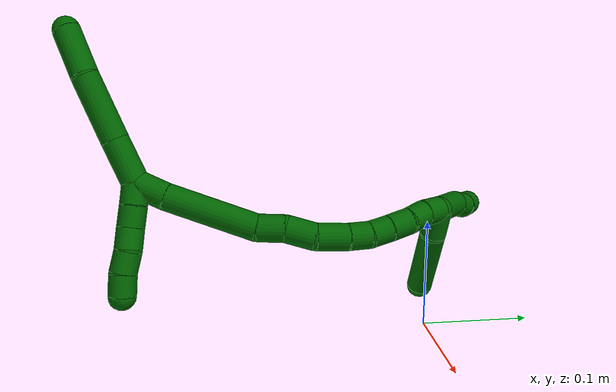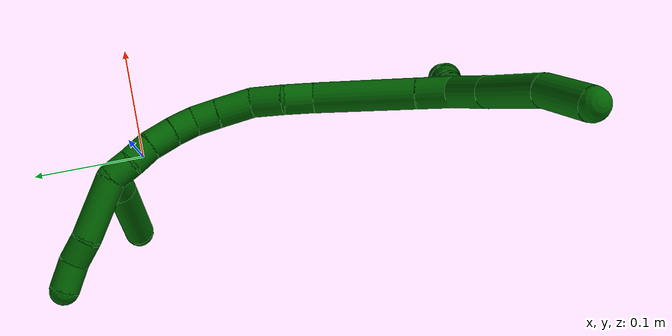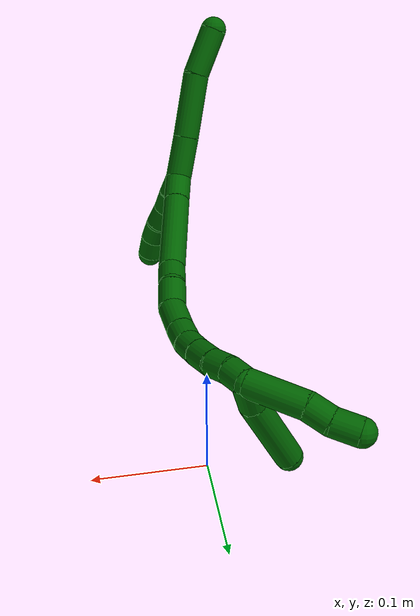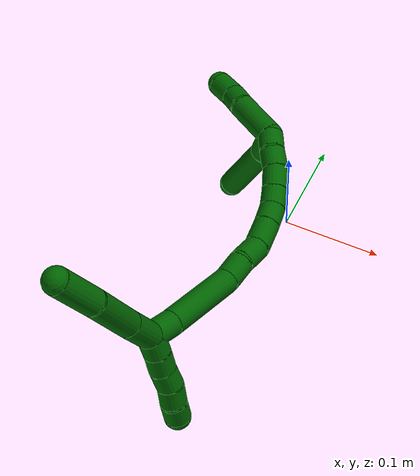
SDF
<sdf version="1.7">
 <world name="default">
  <model name="6">
   <static>0</static>
   <link name="6">
    <collision name="collision-cylinder-e_1_2_8">
     <pose>-0.000784 -0.004776 0.020055 0.233805 -0.038017 -0.004465</pose>
     <geometry><cylinder><radius>0.0125</radius><length>0.041261</length></cylinder></geometry>
     <surface>
      <friction><ode><mu>1.16</mu><mu2>1.16</mu2><slip1>0</slip1><slip2>0</slip2></ode></friction>
      <contact><ode><kp>1e+06</kp><kd>1</kd><max_vel>0</max_vel><min_depth>0.001</min_depth></ode></contact>
     </surface>
    </collision>
    <visual name="visual-cylinder-e_1_2_8">
     <pose>-0.000784 -0.004776 0.020055 0.233805 -0.038017 -0.004465</pose>
     <geometry><cylinder><radius>0.0125</radius><length>0.041261</length></cylinder></geometry>
     <material><ambient>0 0.392157 0.003922 1</ambient></material>
    </visual>
    <collision name="collision-cylinder-e_2_8_9">
     <pose>-0.00247 -0.015896 0.070499 0.205775 -0.029046 -0.002999</pose>
     <geometry><cylinder><radius>0.0125</radius><length>0.062115</length></cylinder></geometry>
     <surface>
      <friction><ode><mu>1.16</mu><mu2>1.16</mu2><slip1>0</slip1><slip2>0</slip2></ode></friction>
      <contact><ode><kp>1e+06</kp><kd>1</kd><max_vel>0</max_vel><min_depth>0.001</min_depth></ode></contact>
     </surface>
    </collision>
    <visual name="visual-cylinder-e_2_8_9">
     <pose>-0.00247 -0.015896 0.070499 0.205775 -0.029046 -0.002999</pose>
     <geometry><cylinder><radius>0.0125</radius><length>0.062115</length></cylinder></geometry>
     <material><ambient>0 0.392157 0.003922 1</ambient></material>
    </visual>
    <collision name="collision-cylinder-e_3_9_6">
     <pose>-0.008226 -0.02931 0.122566 0.315298 -0.209739 -0.033461</pose>
     <geometry><cylinder><radius>0.0125</radius><length>0.046623</length></cylinder></geometry>
     <surface>
      <friction><ode><mu>1.16</mu><mu2>1.16</mu2><slip1>0</slip1><slip2>0</slip2></ode></friction>
      <contact><ode><kp>1e+06</kp><kd>1</kd><max_vel>0</max_vel><min_depth>0.001</min_depth></ode></contact>
     </surface>
    </collision>
    <visual name="visual-cylinder-e_3_9_6">
     <pose>-0.008226 -0.02931 0.122566 0.315298 -0.209739 -0.033461</pose>
     <geometry><cylinder><radius>0.0125</radius><length>0.046623</length></cylinder></geometry>
     <material><ambient>0 0.392157 0.003922 1</ambient></material>
    </visual>
    <collision name="collision-cylinder-e_1_2_10">
     <pose>0.004123 -0.00145 -0.008994 2.98171 0.424999 2.43056</pose>
     <geometry><cylinder><radius>0.0125</radius><length>0.02</length></cylinder></geometry>
     <surface>
      <friction><ode><mu>1.16</mu><mu2>1.16</mu2><slip1>0</slip1><slip2>0</slip2></ode></friction>
      <contact><ode><kp>1e+06</kp><kd>1</kd><max_vel>0</max_vel><min_depth>0.001</min_depth></ode></contact>
     </surface>
    </collision>
    <visual name="visual-cylinder-e_1_2_10">
     <pose>0.004123 -0.00145 -0.008994 2.98171 0.424999 2.43056</pose>
     <geometry><cylinder><radius>0.0125</radius><length>0.02</length></cylinder></geometry>
     <material><ambient>0 0.392157 0.003922 1</ambient></material>
    </visual>
    <collision name="collision-cylinder-e_2_10_11">
     <pose>0.012106 -0.004934 -0.026987 2.91931 0.39624 2.12684</pose>
     <geometry><cylinder><radius>0.0125</radius><length>0.02</length></cylinder></geometry>
     <surface>
      <friction><ode><mu>1.16</mu><mu2>1.16</mu2><slip1>0</slip1><slip2>0</slip2></ode></friction>
      <contact><ode><kp>1e+06</kp><kd>1</kd><max_vel>0</max_vel><min_depth>0.001</min_depth></ode></contact>
     </surface>
    </collision>
    <visual name="visual-cylinder-e_2_10_11">
     <pose>0.012106 -0.004934 -0.026987 2.91931 0.39624 2.12684</pose>
     <geometry><cylinder><radius>0.0125</radius><length>0.02</length></cylinder></geometry>
     <material><ambient>0 0.392157 0.003922 1</ambient></material>
    </visual>
    <collision name="collision-cylinder-e_3_11_12">
     <pose>0.020556 -0.00797 -0.044812 3.02861 0.476895 2.6844</pose>
     <geometry><cylinder><radius>0.0125</radius><length>0.02</length></cylinder></geometry>
     <surface>
      <friction><ode><mu>1.16</mu><mu2>1.16</mu2><slip1>0</slip1><slip2>0</slip2></ode></friction>
      <contact><ode><kp>1e+06</kp><kd>1</kd><max_vel>0</max_vel><min_depth>0.001</min_depth></ode></contact>
     </surface>
    </collision>
    <visual name="visual-cylinder-e_3_11_12">
     <pose>0.020556 -0.00797 -0.044812 3.02861 0.476895 2.6844</pose>
     <geometry><cylinder><radius>0.0125</radius><length>0.02</length></cylinder></geometry>
     <material><ambient>0 0.392157 0.003922 1</ambient></material>
    </visual>
    <collision name="collision-cylinder-e_4_12_13">
     <pose>0.029241 -0.011948 -0.062264 2.80922 0.421882 1.81258</pose>
     <geometry><cylinder><radius>0.0125</radius><length>0.02</length></cylinder></geometry>
     <surface>
      <friction><ode><mu>1.16</mu><mu2>1.16</mu2><slip1>0</slip1><slip2>0</slip2></ode></friction>
      <contact><ode><kp>1e+06</kp><kd>1</kd><max_vel>0</max_vel><min_depth>0.001</min_depth></ode></contact>
     </surface>
    </collision>
    <visual name="visual-cylinder-e_4_12_13">
     <pose>0.029241 -0.011948 -0.062264 2.80922 0.421882 1.81258</pose>
     <geometry><cylinder><radius>0.0125</radius><length>0.02</length></cylinder></geometry>
     <material><ambient>0 0.392157 0.003922 1</ambient></material>
    </visual>
    <collision name="collision-cylinder-e_5_13_5">
     <pose>0.03601 -0.016921 -0.080314 2.93295 0.270784 1.83101</pose>
     <geometry><cylinder><radius>0.0125</radius><length>0.02</length></cylinder></geometry>
     <surface>
      <friction><ode><mu>1.16</mu><mu2>1.16</mu2><slip1>0</slip1><slip2>0</slip2></ode></friction>
      <contact><ode><kp>1e+06</kp><kd>1</kd><max_vel>0</max_vel><min_depth>0.001</min_depth></ode></contact>
     </surface>
    </collision>
    <visual name="visual-cylinder-e_5_13_5">
     <pose>0.03601 -0.016921 -0.080314 2.93295 0.270784 1.83101</pose>
     <geometry><cylinder><radius>0.0125</radius><length>0.02</length></cylinder></geometry>
     <material><ambient>0 0.392157 0.003922 1</ambient></material>
    </visual>
    <collision name="collision-cylinder-e_1_2_14">
     <pose>-0.004612 0.010252 -0.009208 -2.3026 -0.322987 0.700477</pose>
     <geometry><cylinder><radius>0.0125</radius><length>0.029064</length></cylinder></geometry>
     <surface>
      <friction><ode><mu>1.16</mu><mu2>1.16</mu2><slip1>0</slip1><slip2>0</slip2></ode></friction>
      <contact><ode><kp>1e+06</kp><kd>1</kd><max_vel>0</max_vel><min_depth>0.001</min_depth></ode></contact>
     </surface>
    </collision>
    <visual name="visual-cylinder-e_1_2_14">
     <pose>-0.004612 0.010252 -0.009208 -2.3026 -0.322987 0.700477</pose>
     <geometry><cylinder><radius>0.0125</radius><length>0.029064</length></cylinder></geometry>
     <material><ambient>0 0.392157 0.003922 1</ambient></material>
    </visual>
    <collision name="collision-cylinder-e_2_14_15">
     <pose>-0.024229 0.052219 -0.042019 -2.21059 -0.362738 0.700084</pose>
     <geometry><cylinder><radius>0.0125</radius><length>0.08457</length></cylinder></geometry>
     <surface>
      <friction><ode><mu>1.16</mu><mu2>1.16</mu2><slip1>0</slip1><slip2>0</slip2></ode></friction>
      <contact><ode><kp>1e+06</kp><kd>1</kd><max_vel>0</max_vel><min_depth>0.001</min_depth></ode></contact>
     </surface>
    </collision>
    <visual name="visual-cylinder-e_2_14_15">
     <pose>-0.024229 0.052219 -0.042019 -2.21059 -0.362738 0.700084</pose>
     <geometry><cylinder><radius>0.0125</radius><length>0.08457</length></cylinder></geometry>
     <material><ambient>0 0.392157 0.003922 1</ambient></material>
    </visual>
    <collision name="collision-cylinder-e_3_15_16">
     <pose>-0.045086 0.094492 -0.069281 -1.90436 -0.482473 0.66555</pose>
     <geometry><cylinder><radius>0.0125</radius><length>0.025229</length></cylinder></geometry>
     <surface>
      <friction><ode><mu>1.16</mu><mu2>1.16</mu2><slip1>0</slip1><slip2>0</slip2></ode></friction>
      <contact><ode><kp>1e+06</kp><kd>1</kd><max_vel>0</max_vel><min_depth>0.001</min_depth></ode></contact>
     </surface>
    </collision>
    <visual name="visual-cylinder-e_3_15_16">
     <pose>-0.045086 0.094492 -0.069281 -1.90436 -0.482473 0.66555</pose>
     <geometry><cylinder><radius>0.0125</radius><length>0.025229</length></cylinder></geometry>
     <material><ambient>0 0.392157 0.003922 1</ambient></material>
    </visual>
    <collision name="collision-cylinder-e_4_16_17">
     <pose>-0.05658 0.11524 -0.079968 -2.17466 -0.427642 0.784321</pose>
     <geometry><cylinder><radius>0.0125</radius><length>0.027205</length></cylinder></geometry>
     <surface>
      <friction><ode><mu>1.16</mu><mu2>1.16</mu2><slip1>0</slip1><slip2>0</slip2></ode></friction>
      <contact><ode><kp>1e+06</kp><kd>1</kd><max_vel>0</max_vel><min_depth>0.001</min_depth></ode></contact>
     </surface>
    </collision>
    <visual name="visual-cylinder-e_4_16_17">
     <pose>-0.05658 0.11524 -0.079968 -2.17466 -0.427642 0.784321</pose>
     <geometry><cylinder><radius>0.0125</radius><length>0.027205</length></cylinder></geometry>
     <material><ambient>0 0.392157 0.003922 1</ambient></material>
    </visual>
    <collision name="collision-cylinder-e_5_17_18">
     <pose>-0.07198 0.135721 -0.091721 -2.00111 -0.711194 1.04982</pose>
     <geometry><cylinder><radius>0.0125</radius><length>0.029899</length></cylinder></geometry>
     <surface>
      <friction><ode><mu>1.16</mu><mu2>1.16</mu2><slip1>0</slip1><slip2>0</slip2></ode></friction>
      <contact><ode><kp>1e+06</kp><kd>1</kd><max_vel>0</max_vel><min_depth>0.001</min_depth></ode></contact>
     </surface>
    </collision>
    <visual name="visual-cylinder-e_5_17_18">
     <pose>-0.07198 0.135721 -0.091721 -2.00111 -0.711194 1.04982</pose>
     <geometry><cylinder><radius>0.0125</radius><length>0.029899</length></cylinder></geometry>
     <material><ambient>0 0.392157 0.003922 1</ambient></material>
    </visual>
    <collision name="collision-cylinder-e_6_18_19">
     <pose>-0.088906 0.153158 -0.098836 -1.89369 -0.760554 1.01377</pose>
     <geometry><cylinder><radius>0.0125</radius><length>0.020798</length></cylinder></geometry>
     <surface>
      <friction><ode><mu>1.16</mu><mu2>1.16</mu2><slip1>0</slip1><slip2>0</slip2></ode></friction>
      <contact><ode><kp>1e+06</kp><kd>1</kd><max_vel>0</max_vel><min_depth>0.001</min_depth></ode></contact>
     </surface>
    </collision>
    <visual name="visual-cylinder-e_6_18_19">
     <pose>-0.088906 0.153158 -0.098836 -1.89369 -0.760554 1.01377</pose>
     <geometry><cylinder><radius>0.0125</radius><length>0.020798</length></cylinder></geometry>
     <material><ambient>0 0.392157 0.003922 1</ambient></material>
    </visual>
    <collision name="collision-cylinder-e_7_19_20">
     <pose>-0.104092 0.166276 -0.101711 -1.65181 -0.928903 0.99542</pose>
     <geometry><cylinder><radius>0.0125</radius><length>0.020019</length></cylinder></geometry>
     <surface>
      <friction><ode><mu>1.16</mu><mu2>1.16</mu2><slip1>0</slip1><slip2>0</slip2></ode></friction>
      <contact><ode><kp>1e+06</kp><kd>1</kd><max_vel>0</max_vel><min_depth>0.001</min_depth></ode></contact>
     </surface>
    </collision>
    <visual name="visual-cylinder-e_7_19_20">
     <pose>-0.104092 0.166276 -0.101711 -1.65181 -0.928903 0.99542</pose>
     <geometry><cylinder><radius>0.0125</radius><length>0.020019</length></cylinder></geometry>
     <material><ambient>0 0.392157 0.003922 1</ambient></material>
    </visual>
    <collision name="collision-cylinder-e_8_20_21">
     <pose>-0.121633 0.178291 -0.10259 -1.63588 -1.00456 1.06046</pose>
     <geometry><cylinder><radius>0.0125</radius><length>0.022571</length></cylinder></geometry>
     <surface>
      <friction><ode><mu>1.16</mu><mu2>1.16</mu2><slip1>0</slip1><slip2>0</slip2></ode></friction>
      <contact><ode><kp>1e+06</kp><kd>1</kd><max_vel>0</max_vel><min_depth>0.001</min_depth></ode></contact>
     </surface>
    </collision>
    <visual name="visual-cylinder-e_8_20_21">
     <pose>-0.121633 0.178291 -0.10259 -1.63588 -1.00456 1.06046</pose>
     <geometry><cylinder><radius>0.0125</radius><length>0.022571</length></cylinder></geometry>
     <material><ambient>0 0.392157 0.003922 1</ambient></material>
    </visual>
    <collision name="collision-cylinder-e_9_21_22">
     <pose>-0.140662 0.188099 -0.102775 -1.51546 -1.1929 1.14198</pose>
     <geometry><cylinder><radius>0.0125</radius><length>0.020453</length></cylinder></geometry>
     <surface>
      <friction><ode><mu>1.16</mu><mu2>1.16</mu2><slip1>0</slip1><slip2>0</slip2></ode></friction>
      <contact><ode><kp>1e+06</kp><kd>1</kd><max_vel>0</max_vel><min_depth>0.001</min_depth></ode></contact>
     </surface>
    </collision>
    <visual name="visual-cylinder-e_9_21_22">
     <pose>-0.140662 0.188099 -0.102775 -1.51546 -1.1929 1.14198</pose>
     <geometry><cylinder><radius>0.0125</radius><length>0.020453</length></cylinder></geometry>
     <material><ambient>0 0.392157 0.003922 1</ambient></material>
    </visual>
    <collision name="collision-cylinder-e_10_22_1">
     <pose>-0.159208 0.196057 -0.104189 -1.94038 -1.10956 1.47074</pose>
     <geometry><cylinder><radius>0.0125</radius><length>0.020192</length></cylinder></geometry>
     <surface>
      <friction><ode><mu>1.16</mu><mu2>1.16</mu2><slip1>0</slip1><slip2>0</slip2></ode></friction>
      <contact><ode><kp>1e+06</kp><kd>1</kd><max_vel>0</max_vel><min_depth>0.001</min_depth></ode></contact>
     </surface>
    </collision>
    <visual name="visual-cylinder-e_10_22_1">
     <pose>-0.159208 0.196057 -0.104189 -1.94038 -1.10956 1.47074</pose>
     <geometry><cylinder><radius>0.0125</radius><length>0.020192</length></cylinder></geometry>
     <material><ambient>0 0.392157 0.003922 1</ambient></material>
    </visual>
    <collision name="collision-cylinder-e_1_1_23">
     <pose>-0.169247 0.193526 -0.117904 2.63434 -0.072036 -0.27626</pose>
     <geometry><cylinder><radius>0.0125</radius><length>0.02774</length></cylinder></geometry>
     <surface>
      <friction><ode><mu>1.16</mu><mu2>1.16</mu2><slip1>0</slip1><slip2>0</slip2></ode></friction>
      <contact><ode><kp>1e+06</kp><kd>1</kd><max_vel>0</max_vel><min_depth>0.001</min_depth></ode></contact>
     </surface>
    </collision>
    <visual name="visual-cylinder-e_1_1_23">
     <pose>-0.169247 0.193526 -0.117904 2.63434 -0.072036 -0.27626</pose>
     <geometry><cylinder><radius>0.0125</radius><length>0.02774</length></cylinder></geometry>
     <material><ambient>0 0.392157 0.003922 1</ambient></material>
    </visual>
    <collision name="collision-cylinder-e_2_23_4">
     <pose>-0.180804 0.168035 -0.159005 2.56727 -0.296577 -0.936608</pose>
     <geometry><cylinder><radius>0.0125</radius><length>0.07226</length></cylinder></geometry>
     <surface>
      <friction><ode><mu>1.16</mu><mu2>1.16</mu2><slip1>0</slip1><slip2>0</slip2></ode></friction>
      <contact><ode><kp>1e+06</kp><kd>1</kd><max_vel>0</max_vel><min_depth>0.001</min_depth></ode></contact>
     </surface>
    </collision>
    <visual name="visual-cylinder-e_2_23_4">
     <pose>-0.180804 0.168035 -0.159005 2.56727 -0.296577 -0.936608</pose>
     <geometry><cylinder><radius>0.0125</radius><length>0.07226</length></cylinder></geometry>
     <material><ambient>0 0.392157 0.003922 1</ambient></material>
    </visual>
    <collision name="collision-cylinder-e_1_1_24">
     <pose>-0.19422 0.197885 -0.110722 2.69315 -1.36404 -2.59399</pose>
     <geometry><cylinder><radius>0.0125</radius><length>0.053074</length></cylinder></geometry>
     <surface>
      <friction><ode><mu>1.16</mu><mu2>1.16</mu2><slip1>0</slip1><slip2>0</slip2></ode></friction>
      <contact><ode><kp>1e+06</kp><kd>1</kd><max_vel>0</max_vel><min_depth>0.001</min_depth></ode></contact>
     </surface>
    </collision>
    <visual name="visual-cylinder-e_1_1_24">
     <pose>-0.19422 0.197885 -0.110722 2.69315 -1.36404 -2.59399</pose>
     <geometry><cylinder><radius>0.0125</radius><length>0.053074</length></cylinder></geometry>
     <material><ambient>0 0.392157 0.003922 1</ambient></material>
    </visual>
    <collision name="collision-cylinder-e_2_24_25">
     <pose>-0.230551 0.1955 -0.119814 3.13616 -1.187 -3.13354</pose>
     <geometry><cylinder><radius>0.0125</radius><length>0.022342</length></cylinder></geometry>
     <surface>
      <friction><ode><mu>1.16</mu><mu2>1.16</mu2><slip1>0</slip1><slip2>0</slip2></ode></friction>
      <contact><ode><kp>1e+06</kp><kd>1</kd><max_vel>0</max_vel><min_depth>0.001</min_depth></ode></contact>
     </surface>
    </collision>
    <visual name="visual-cylinder-e_2_24_25">
     <pose>-0.230551 0.1955 -0.119814 3.13616 -1.187 -3.13354</pose>
     <geometry><cylinder><radius>0.0125</radius><length>0.022342</length></cylinder></geometry>
     <material><ambient>0 0.392157 0.003922 1</ambient></material>
    </visual>
    <collision name="collision-cylinder-e_3_25_3">
     <pose>-0.252859 0.19371 -0.126269 2.4808 -1.33439 -2.32029</pose>
     <geometry><cylinder><radius>0.0125</radius><length>0.024584</length></cylinder></geometry>
     <surface>
      <friction><ode><mu>1.16</mu><mu2>1.16</mu2><slip1>0</slip1><slip2>0</slip2></ode></friction>
      <contact><ode><kp>1e+06</kp><kd>1</kd><max_vel>0</max_vel><min_depth>0.001</min_depth></ode></contact>
     </surface>
    </collision>
    <visual name="visual-cylinder-e_3_25_3">
     <pose>-0.252859 0.19371 -0.126269 2.4808 -1.33439 -2.32029</pose>
     <geometry><cylinder><radius>0.0125</radius><length>0.024584</length></cylinder></geometry>
     <material><ambient>0 0.392157 0.003922 1</ambient></material>
    </visual>
    <collision name="collision-sphere-3">
     <pose>-0.264809 0.191943 -0.128542 0 -0 0</pose>
     <geometry><sphere><radius>0.0125</radius></sphere></geometry>
     <surface>
      <friction><ode><mu>1.16</mu><mu2>1.16</mu2><slip1>0</slip1><slip2>0</slip2></ode></friction>
      <contact><ode><kp>1e+06</kp><kd>1</kd><max_vel>0</max_vel><min_depth>0.001</min_depth></ode></contact>
     </surface>
    </collision>
    <visual name="visual-sphere-3">
     <pose>-0.264809 0.191943 -0.128542 0 -0 0</pose>
     <geometry><sphere><radius>0.0125</radius></sphere></geometry>
     <material><ambient>0 0.392157 0.003922 1</ambient></material>
    </visual>
    <collision name="collision-sphere-25">
     <pose>-0.240909 0.195477 -0.123996 0 -0 0</pose>
     <geometry><sphere><radius>0.0125</radius></sphere></geometry>
     <surface>
      <friction><ode><mu>1.16</mu><mu2>1.16</mu2><slip1>0</slip1><slip2>0</slip2></ode></friction>
      <contact><ode><kp>1e+06</kp><kd>1</kd><max_vel>0</max_vel><min_depth>0.001</min_depth></ode></contact>
     </surface>
    </collision>
    <visual name="visual-sphere-25">
     <pose>-0.240909 0.195477 -0.123996 0 -0 0</pose>
     <geometry><sphere><radius>0.0125</radius></sphere></geometry>
     <material><ambient>0 0.392157 0.003922 1</ambient></material>
    </visual>
    <collision name="collision-sphere-24">
     <pose>-0.220192 0.195523 -0.115631 0 -0 0</pose>
     <geometry><sphere><radius>0.0125</radius></sphere></geometry>
     <surface>
      <friction><ode><mu>1.16</mu><mu2>1.16</mu2><slip1>0</slip1><slip2>0</slip2></ode></friction>
      <contact><ode><kp>1e+06</kp><kd>1</kd><max_vel>0</max_vel><min_depth>0.001</min_depth></ode></contact>
     </surface>
    </collision>
    <visual name="visual-sphere-24">
     <pose>-0.220192 0.195523 -0.115631 0 -0 0</pose>
     <geometry><sphere><radius>0.0125</radius></sphere></geometry>
     <material><ambient>0 0.392157 0.003922 1</ambient></material>
    </visual>
    <collision name="collision-sphere-4">
     <pose>-0.191363 0.149263 -0.188015 0 -0 0</pose>
     <geometry><sphere><radius>0.0125</radius></sphere></geometry>
     <surface>
      <friction><ode><mu>1.16</mu><mu2>1.16</mu2><slip1>0</slip1><slip2>0</slip2></ode></friction>
      <contact><ode><kp>1e+06</kp><kd>1</kd><max_vel>0</max_vel><min_depth>0.001</min_depth></ode></contact>
     </surface>
    </collision>
    <visual name="visual-sphere-4">
     <pose>-0.191363 0.149263 -0.188015 0 -0 0</pose>
     <geometry><sphere><radius>0.0125</radius></sphere></geometry>
     <material><ambient>0 0.392157 0.003922 1</ambient></material>
    </visual>
    <collision name="collision-sphere-23">
     <pose>-0.170245 0.186806 -0.129996 0 -0 0</pose>
     <geometry><sphere><radius>0.0125</radius></sphere></geometry>
     <surface>
      <friction><ode><mu>1.16</mu><mu2>1.16</mu2><slip1>0</slip1><slip2>0</slip2></ode></friction>
      <contact><ode><kp>1e+06</kp><kd>1</kd><max_vel>0</max_vel><min_depth>0.001</min_depth></ode></contact>
     </surface>
    </collision>
    <visual name="visual-sphere-23">
     <pose>-0.170245 0.186806 -0.129996 0 -0 0</pose>
     <geometry><sphere><radius>0.0125</radius></sphere></geometry>
     <material><ambient>0 0.392157 0.003922 1</ambient></material>
    </visual>
    <collision name="collision-sphere-1">
     <pose>-0.168249 0.200247 -0.105812 0 -0 0</pose>
     <geometry><sphere><radius>0.0125</radius></sphere></geometry>
     <surface>
      <friction><ode><mu>1.16</mu><mu2>1.16</mu2><slip1>0</slip1><slip2>0</slip2></ode></friction>
      <contact><ode><kp>1e+06</kp><kd>1</kd><max_vel>0</max_vel><min_depth>0.001</min_depth></ode></contact>
     </surface>
    </collision>
    <visual name="visual-sphere-1">
     <pose>-0.168249 0.200247 -0.105812 0 -0 0</pose>
     <geometry><sphere><radius>0.0125</radius></sphere></geometry>
     <material><ambient>0 0.392157 0.003922 1</ambient></material>
    </visual>
    <collision name="collision-sphere-22">
     <pose>-0.150167 0.191867 -0.102566 0 -0 0</pose>
     <geometry><sphere><radius>0.0125</radius></sphere></geometry>
     <surface>
      <friction><ode><mu>1.16</mu><mu2>1.16</mu2><slip1>0</slip1><slip2>0</slip2></ode></friction>
      <contact><ode><kp>1e+06</kp><kd>1</kd><max_vel>0</max_vel><min_depth>0.001</min_depth></ode></contact>
     </surface>
    </collision>
    <visual name="visual-sphere-22">
     <pose>-0.150167 0.191867 -0.102566 0 -0 0</pose>
     <geometry><sphere><radius>0.0125</radius></sphere></geometry>
     <material><ambient>0 0.392157 0.003922 1</ambient></material>
    </visual>
    <collision name="collision-sphere-21">
     <pose>-0.131157 0.184332 -0.102984 0 -0 0</pose>
     <geometry><sphere><radius>0.0125</radius></sphere></geometry>
     <surface>
      <friction><ode><mu>1.16</mu><mu2>1.16</mu2><slip1>0</slip1><slip2>0</slip2></ode></friction>
      <contact><ode><kp>1e+06</kp><kd>1</kd><max_vel>0</max_vel><min_depth>0.001</min_depth></ode></contact>
     </surface>
    </collision>
    <visual name="visual-sphere-21">
     <pose>-0.131157 0.184332 -0.102984 0 -0 0</pose>
     <geometry><sphere><radius>0.0125</radius></sphere></geometry>
     <material><ambient>0 0.392157 0.003922 1</ambient></material>
    </visual>
    <collision name="collision-sphere-11">
     <pose>0.015965 -0.006968 -0.035985 0 -0 0</pose>
     <geometry><sphere><radius>0.0125</radius></sphere></geometry>
     <surface>
      <friction><ode><mu>1.16</mu><mu2>1.16</mu2><slip1>0</slip1><slip2>0</slip2></ode></friction>
      <contact><ode><kp>1e+06</kp><kd>1</kd><max_vel>0</max_vel><min_depth>0.001</min_depth></ode></contact>
     </surface>
    </collision>
    <visual name="visual-sphere-11">
     <pose>0.015965 -0.006968 -0.035985 0 -0 0</pose>
     <geometry><sphere><radius>0.0125</radius></sphere></geometry>
     <material><ambient>0 0.392157 0.003922 1</ambient></material>
    </visual>
    <collision name="collision-sphere-10">
     <pose>0.008246 -0.002901 -0.017988 0 -0 0</pose>
     <geometry><sphere><radius>0.0125</radius></sphere></geometry>
     <surface>
      <friction><ode><mu>1.16</mu><mu2>1.16</mu2><slip1>0</slip1><slip2>0</slip2></ode></friction>
      <contact><ode><kp>1e+06</kp><kd>1</kd><max_vel>0</max_vel><min_depth>0.001</min_depth></ode></contact>
     </surface>
    </collision>
    <visual name="visual-sphere-10">
     <pose>0.008246 -0.002901 -0.017988 0 -0 0</pose>
     <geometry><sphere><radius>0.0125</radius></sphere></geometry>
     <material><ambient>0 0.392157 0.003922 1</ambient></material>
    </visual>
    <collision name="collision-sphere-6">
     <pose>-0.013079 -0.03638 0.144243 0 -0 0</pose>
     <geometry><sphere><radius>0.0125</radius></sphere></geometry>
     <surface>
      <friction><ode><mu>1.16</mu><mu2>1.16</mu2><slip1>0</slip1><slip2>0</slip2></ode></friction>
      <contact><ode><kp>1e+06</kp><kd>1</kd><max_vel>0</max_vel><min_depth>0.001</min_depth></ode></contact>
     </surface>
    </collision>
    <visual name="visual-sphere-6">
     <pose>-0.013079 -0.03638 0.144243 0 -0 0</pose>
     <geometry><sphere><radius>0.0125</radius></sphere></geometry>
     <material><ambient>0 0.392157 0.003922 1</ambient></material>
    </visual>
    <collision name="collision-sphere-9">
     <pose>-0.003372 -0.022239 0.100889 0 -0 0</pose>
     <geometry><sphere><radius>0.0125</radius></sphere></geometry>
     <surface>
      <friction><ode><mu>1.16</mu><mu2>1.16</mu2><slip1>0</slip1><slip2>0</slip2></ode></friction>
      <contact><ode><kp>1e+06</kp><kd>1</kd><max_vel>0</max_vel><min_depth>0.001</min_depth></ode></contact>
     </surface>
    </collision>
    <visual name="visual-sphere-9">
     <pose>-0.003372 -0.022239 0.100889 0 -0 0</pose>
     <geometry><sphere><radius>0.0125</radius></sphere></geometry>
     <material><ambient>0 0.392157 0.003922 1</ambient></material>
    </visual>
    <collision name="collision-sphere-2">
     <geometry><sphere><radius>0.0125</radius></sphere></geometry>
     <surface>
      <friction><ode><mu>1.16</mu><mu2>1.16</mu2><slip1>0</slip1><slip2>0</slip2></ode></friction>
      <contact><ode><kp>1e+06</kp><kd>1</kd><max_vel>0</max_vel><min_depth>0.001</min_depth></ode></contact>
     </surface>
    </collision>
    <visual name="visual-sphere-2">
     <geometry><sphere><radius>0.0125</radius></sphere></geometry>
     <material><ambient>0 0.392157 0.003922 1</ambient></material>
    </visual>
    <collision name="collision-sphere-19">
     <pose>-0.096075 0.160303 -0.101226 0 -0 0</pose>
     <geometry><sphere><radius>0.0125</radius></sphere></geometry>
     <surface>
      <friction><ode><mu>1.16</mu><mu2>1.16</mu2><slip1>0</slip1><slip2>0</slip2></ode></friction>
      <contact><ode><kp>1e+06</kp><kd>1</kd><max_vel>0</max_vel><min_depth>0.001</min_depth></ode></contact>
     </surface>
    </collision>
    <visual name="visual-sphere-19">
     <pose>-0.096075 0.160303 -0.101226 0 -0 0</pose>
     <geometry><sphere><radius>0.0125</radius></sphere></geometry>
     <material><ambient>0 0.392157 0.003922 1</ambient></material>
    </visual>
    <collision name="collision-sphere-8">
     <pose>-0.001568 -0.009553 0.04011 0 -0 0</pose>
     <geometry><sphere><radius>0.0125</radius></sphere></geometry>
     <surface>
      <friction><ode><mu>1.16</mu><mu2>1.16</mu2><slip1>0</slip1><slip2>0</slip2></ode></friction>
      <contact><ode><kp>1e+06</kp><kd>1</kd><max_vel>0</max_vel><min_depth>0.001</min_depth></ode></contact>
     </surface>
    </collision>
    <visual name="visual-sphere-8">
     <pose>-0.001568 -0.009553 0.04011 0 -0 0</pose>
     <geometry><sphere><radius>0.0125</radius></sphere></geometry>
     <material><ambient>0 0.392157 0.003922 1</ambient></material>
    </visual>
    <collision name="collision-sphere-12">
     <pose>0.025146 -0.008972 -0.05364 0 -0 0</pose>
     <geometry><sphere><radius>0.0125</radius></sphere></geometry>
     <surface>
      <friction><ode><mu>1.16</mu><mu2>1.16</mu2><slip1>0</slip1><slip2>0</slip2></ode></friction>
      <contact><ode><kp>1e+06</kp><kd>1</kd><max_vel>0</max_vel><min_depth>0.001</min_depth></ode></contact>
     </surface>
    </collision>
    <visual name="visual-sphere-12">
     <pose>0.025146 -0.008972 -0.05364 0 -0 0</pose>
     <geometry><sphere><radius>0.0125</radius></sphere></geometry>
     <material><ambient>0 0.392157 0.003922 1</ambient></material>
    </visual>
    <collision name="collision-sphere-13">
     <pose>0.033335 -0.014925 -0.070888 0 -0 0</pose>
     <geometry><sphere><radius>0.0125</radius></sphere></geometry>
     <surface>
      <friction><ode><mu>1.16</mu><mu2>1.16</mu2><slip1>0</slip1><slip2>0</slip2></ode></friction>
      <contact><ode><kp>1e+06</kp><kd>1</kd><max_vel>0</max_vel><min_depth>0.001</min_depth></ode></contact>
     </surface>
    </collision>
    <visual name="visual-sphere-13">
     <pose>0.033335 -0.014925 -0.070888 0 -0 0</pose>
     <geometry><sphere><radius>0.0125</radius></sphere></geometry>
     <material><ambient>0 0.392157 0.003922 1</ambient></material>
    </visual>
    <collision name="collision-sphere-5">
     <pose>0.038685 -0.018917 -0.089741 0 -0 0</pose>
     <geometry><sphere><radius>0.0125</radius></sphere></geometry>
     <surface>
      <friction><ode><mu>1.16</mu><mu2>1.16</mu2><slip1>0</slip1><slip2>0</slip2></ode></friction>
      <contact><ode><kp>1e+06</kp><kd>1</kd><max_vel>0</max_vel><min_depth>0.001</min_depth></ode></contact>
     </surface>
    </collision>
    <visual name="visual-sphere-5">
     <pose>0.038685 -0.018917 -0.089741 0 -0 0</pose>
     <geometry><sphere><radius>0.0125</radius></sphere></geometry>
     <material><ambient>0 0.392157 0.003922 1</ambient></material>
    </visual>
    <collision name="collision-sphere-14">
     <pose>-0.009225 0.020505 -0.018417 0 -0 0</pose>
     <geometry><sphere><radius>0.0125</radius></sphere></geometry>
     <surface>
      <friction><ode><mu>1.16</mu><mu2>1.16</mu2><slip1>0</slip1><slip2>0</slip2></ode></friction>
      <contact><ode><kp>1e+06</kp><kd>1</kd><max_vel>0</max_vel><min_depth>0.001</min_depth></ode></contact>
     </surface>
    </collision>
    <visual name="visual-sphere-14">
     <pose>-0.009225 0.020505 -0.018417 0 -0 0</pose>
     <geometry><sphere><radius>0.0125</radius></sphere></geometry>
     <material><ambient>0 0.392157 0.003922 1</ambient></material>
    </visual>
    <collision name="collision-sphere-15">
     <pose>-0.039233 0.083934 -0.065622 0 -0 0</pose>
     <geometry><sphere><radius>0.0125</radius></sphere></geometry>
     <surface>
      <friction><ode><mu>1.16</mu><mu2>1.16</mu2><slip1>0</slip1><slip2>0</slip2></ode></friction>
      <contact><ode><kp>1e+06</kp><kd>1</kd><max_vel>0</max_vel><min_depth>0.001</min_depth></ode></contact>
     </surface>
    </collision>
    <visual name="visual-sphere-15">
     <pose>-0.039233 0.083934 -0.065622 0 -0 0</pose>
     <geometry><sphere><radius>0.0125</radius></sphere></geometry>
     <material><ambient>0 0.392157 0.003922 1</ambient></material>
    </visual>
    <collision name="collision-sphere-16">
     <pose>-0.050939 0.105051 -0.07294 0 -0 0</pose>
     <geometry><sphere><radius>0.0125</radius></sphere></geometry>
     <surface>
      <friction><ode><mu>1.16</mu><mu2>1.16</mu2><slip1>0</slip1><slip2>0</slip2></ode></friction>
      <contact><ode><kp>1e+06</kp><kd>1</kd><max_vel>0</max_vel><min_depth>0.001</min_depth></ode></contact>
     </surface>
    </collision>
    <visual name="visual-sphere-16">
     <pose>-0.050939 0.105051 -0.07294 0 -0 0</pose>
     <geometry><sphere><radius>0.0125</radius></sphere></geometry>
     <material><ambient>0 0.392157 0.003922 1</ambient></material>
    </visual>
    <collision name="collision-sphere-17">
     <pose>-0.062222 0.125428 -0.086996 0 -0 0</pose>
     <geometry><sphere><radius>0.0125</radius></sphere></geometry>
     <surface>
      <friction><ode><mu>1.16</mu><mu2>1.16</mu2><slip1>0</slip1><slip2>0</slip2></ode></friction>
      <contact><ode><kp>1e+06</kp><kd>1</kd><max_vel>0</max_vel><min_depth>0.001</min_depth></ode></contact>
     </surface>
    </collision>
    <visual name="visual-sphere-17">
     <pose>-0.062222 0.125428 -0.086996 0 -0 0</pose>
     <geometry><sphere><radius>0.0125</radius></sphere></geometry>
     <material><ambient>0 0.392157 0.003922 1</ambient></material>
    </visual>
    <collision name="collision-sphere-18">
     <pose>-0.081738 0.146014 -0.096445 0 -0 0</pose>
     <geometry><sphere><radius>0.0125</radius></sphere></geometry>
     <surface>
      <friction><ode><mu>1.16</mu><mu2>1.16</mu2><slip1>0</slip1><slip2>0</slip2></ode></friction>
      <contact><ode><kp>1e+06</kp><kd>1</kd><max_vel>0</max_vel><min_depth>0.001</min_depth></ode></contact>
     </surface>
    </collision>
    <visual name="visual-sphere-18">
     <pose>-0.081738 0.146014 -0.096445 0 -0 0</pose>
     <geometry><sphere><radius>0.0125</radius></sphere></geometry>
     <material><ambient>0 0.392157 0.003922 1</ambient></material>
    </visual>
    <collision name="collision-sphere-20">
     <pose>-0.112109 0.172249 -0.102196 0 -0 0</pose>
     <geometry><sphere><radius>0.0125</radius></sphere></geometry>
     <surface>
      <friction><ode><mu>1.16</mu><mu2>1.16</mu2><slip1>0</slip1><slip2>0</slip2></ode></friction>
      <contact><ode><kp>1e+06</kp><kd>1</kd><max_vel>0</max_vel><min_depth>0.001</min_depth></ode></contact>
     </surface>
    </collision>
    <visual name="visual-sphere-20">
     <pose>-0.112109 0.172249 -0.102196 0 -0 0</pose>
     <geometry><sphere><radius>0.0125</radius></sphere></geometry>
     <material><ambient>0 0.392157 0.003922 1</ambient></material>
    </visual>
    <inertial>
     <pose>-0.076994 0.088484 -0.054753 0 -0 0</pose>
     <mass>0.75</mass>
     <inertia><ixx>0.000101</ixx><ixy>0</ixy><ixz>0</ixz><iyy>6.2e-05</iyy><iyz>0</iyz><izz>2.6e-05</izz></inertia>
    </inertial>
   </link>
   <pose>-0.016939 -0.260466 0.140566 0.267658 0.069297 -0.618161</pose>
  </model>
 </world>
</sdf>
